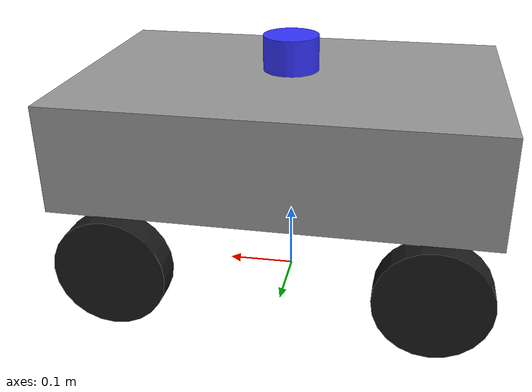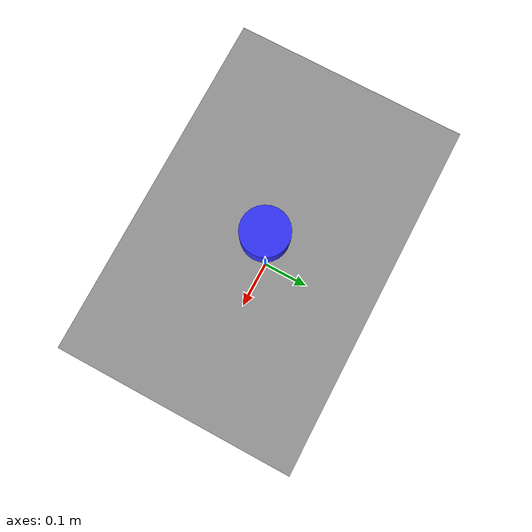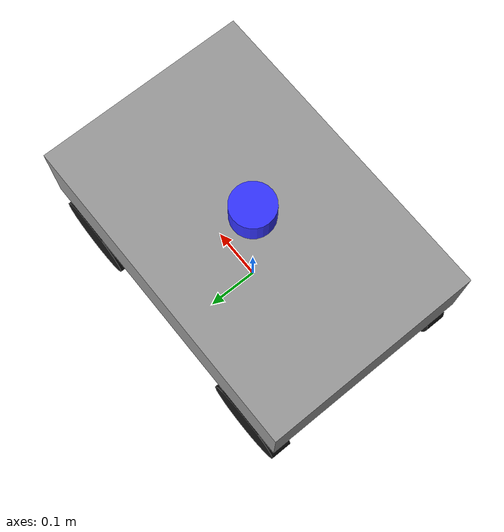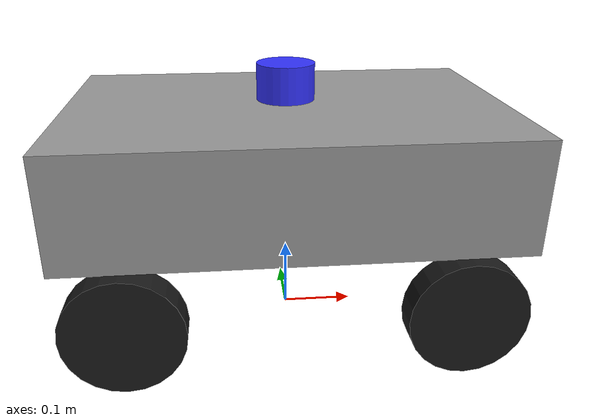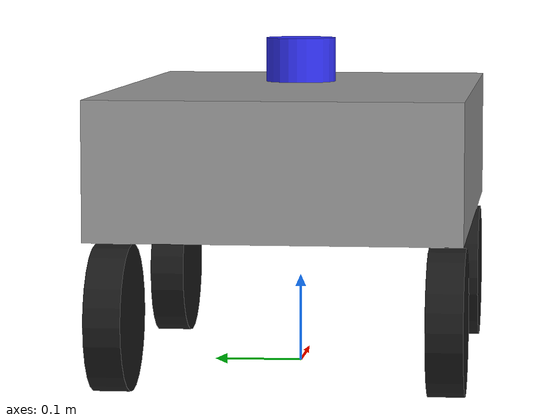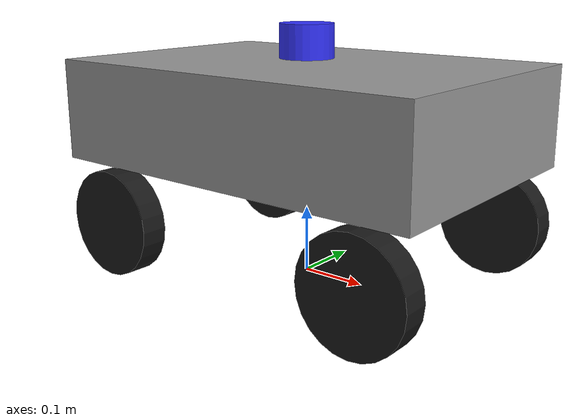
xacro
<?xml version="1.0"?>
<robot name="ae86_bot" xmlns:xacro="http://www.ros.org/wiki/xacro">

  <!-- Parameters -->
  <xacro:property name="base_length" value="0.6"/>
  <xacro:property name="base_width" value="0.4"/>
  <xacro:property name="base_height" value="0.15"/>

  <xacro:property name="wheel_radius" value="0.08"/>
  <xacro:property name="wheel_width" value="0.04"/>

  <xacro:property name="lidar_height" value="0.20"/>
  <xacro:property name="lidar_radius" value="0.04"/>

  <!-- Inertial helper macro -->
  <xacro:macro name="inertial_cylinder" params="mass radius length">
    <inertial>
      <mass value="${mass}"/>
      <origin xyz="0 0 0" rpy="0 0 0"/>
      <inertia ixx="${0.5*mass*radius*radius}" ixy="0" ixz="0" iyy="${0.5*mass*radius*radius}" iyz="0" izz="${mass*(3*radius*radius+length*length)/12}"/>
    </inertial>
  </xacro:macro>

  <xacro:macro name="inertial_box" params="mass x y z">
    <inertial>
      <mass value="${mass}"/>
      <origin xyz="0 0 0" rpy="0 0 0"/>
      <inertia ixx="${mass*(y*y+z*z)/12}" ixy="0" ixz="0" iyy="${mass*(x*x+z*z)/12}" iyz="0" izz="${mass*(x*x+y*y)/12}"/>
    </inertial>
  </xacro:macro>

  <!-- Base link -->
  <link name="base_link">
    <visual>
      <origin xyz="0 0 ${2*wheel_radius + 0.01 + base_height/2}"/>
      <geometry>
        <box size="${base_length} ${base_width} ${base_height}"/>
      </geometry>
      <material name="gray">
        <color rgba="0.6 0.6 0.6 1"/>
      </material>
    </visual>
    <collision>
      <origin xyz="0 0 ${2*wheel_radius + 0.01 + base_height/2}"/>
      <geometry>
        <box size="${base_length} ${base_width} ${base_height}"/>
      </geometry>
    </collision>
    <xacro:inertial_box mass="5.0" x="${base_length}" y="${base_width}" z="${base_height}"/>
  </link>

  <!-- Wheel macro -->
  <xacro:macro name="wheel" params="name x y">
    <link name="${name}">
      <visual>
        <origin xyz="0 0 0" rpy="${pi/2} 0 0"/>
        <geometry>
          <cylinder radius="${wheel_radius}" length="${wheel_width}"/>
        </geometry>
        <material name="black">
          <color rgba="0.1 0.1 0.1 1"/>
        </material>
      </visual>
      <collision>
        <origin xyz="0 0 0" rpy="${pi/2} 0 0"/>
        <geometry>
          <cylinder radius="${wheel_radius}" length="${wheel_width}"/>
        </geometry>
      </collision>
      <xacro:inertial_cylinder mass="0.3" radius="${wheel_radius}" length="${wheel_width}"/>
    </link>

    <joint name="${name}_joint" type="continuous">
      <parent link="base_link"/>
      <child link="${name}"/>
      <origin xyz="${x} ${y} ${wheel_radius}" rpy="0 0 0"/>
      <axis xyz="0 1 0"/>
    </joint>
  </xacro:macro>

  <!-- Wheels positions -->
  <xacro:property name="x_front" value="${ base_length/2 - 0.08 }"/>
  <xacro:property name="x_rear" value="${ -base_length/2 + 0.08 }"/>
  <xacro:property name="y_left" value="${ base_width/2 - wheel_width/2 }"/>
  <xacro:property name="y_right" value="${ -base_width/2 + wheel_width/2 }"/>

  <xacro:wheel name="front_left_wheel"  x="${x_front}" y="${y_left}"/>
  <xacro:wheel name="front_right_wheel" x="${x_front}" y="${y_right}"/>
  <xacro:wheel name="rear_left_wheel"   x="${x_rear}"  y="${y_left}"/>
  <xacro:wheel name="rear_right_wheel"  x="${x_rear}"  y="${y_right}"/>

  <!-- LiDAR link -->
  <link name="lidar_link">
    <visual>
      <origin xyz="0 0 0" rpy="0 0 0"/>
      <geometry>
        <cylinder radius="${lidar_radius}" length="0.05"/>
      </geometry>
      <material name="blue">
        <color rgba="0.2 0.2 1.0 1"/>
      </material>
    </visual>
    <collision>
      <origin xyz="0 0 0" rpy="0 0 0"/>
      <geometry>
        <cylinder radius="${lidar_radius}" length="0.05"/>
      </geometry>
    </collision>
    <xacro:inertial_cylinder mass="0.2" radius="${lidar_radius}" length="0.05"/>
  </link>

  <joint name="lidar_joint" type="fixed">
    <parent link="base_link"/>
    <child link="lidar_link"/>
    <origin xyz="0 0 ${base_height + lidar_height}" rpy="0 0 0"/>
  </joint>

  <!-- Base to world fixed joint for visualization convenience -->
  <link name="world"/>
  <joint name="world_to_base" type="fixed">
    <parent link="world"/>
    <child link="base_link"/>
    <origin xyz="0 0 0" rpy="0 0 0"/>
  </joint>

</robot>
